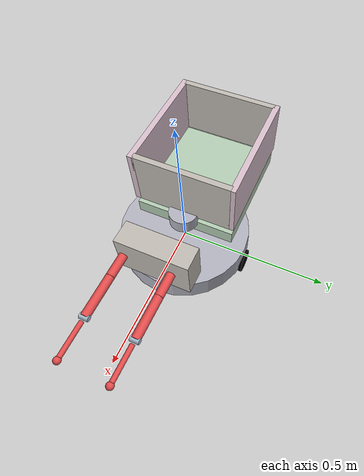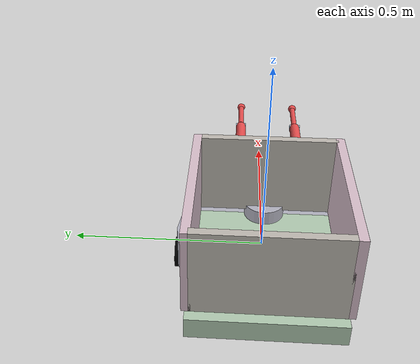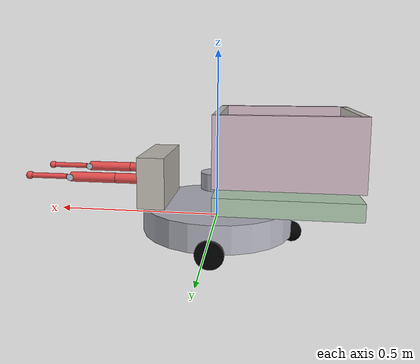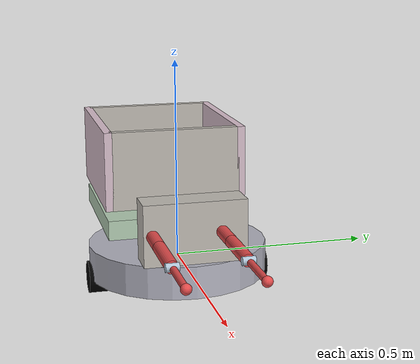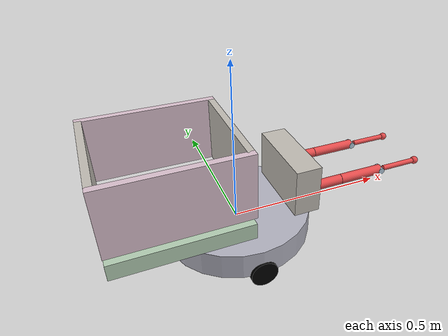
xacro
<?xml version="1.0"?>
<robot xmlns:xacro="http://www.ros.org/wiki/xacro" name="gpu_slam_bot">
  <!-- Robot Parameters -->
  <xacro:property name="base_radius" value="0.225"/>
  <xacro:property name="base_height" value="0.08"/>
  <xacro:property name="wheel_radius" value="0.04"/>
  <xacro:property name="wheel_width" value="0.06"/>
  <xacro:property name="wheel_separation" value="0.40"/>
  <xacro:property name="caster_radius" value="0.03"/>

  <!-- Enhanced Gripper Parameters -->
  <xacro:property name="gripper_base_height" value="0.15"/>
  <xacro:property name="gripper_base_width" value="0.25"/>
  <xacro:property name="upper_arm_length" value="0.12"/>
  <xacro:property name="forearm_length" value="0.14"/>
  <xacro:property name="forearm_radius" value="0.02"/>
  <xacro:property name="gripper_finger_length" value="0.12"/>
  <xacro:property name="arm_radius" value="0.015"/>
  <xacro:property name="finger_radius" value="0.008"/>
  <xacro:property name="gripper_tip_radius" value="0.012"/>

  <!-- Masses -->
  <xacro:property name="gripper_base_mass" value="0.5"/>
  <xacro:property name="upper_arm_mass" value="0.3"/>
  <xacro:property name="forearm_mass" value="0.2"/>
  <xacro:property name="finger_mass" value="0.1"/>
  <xacro:property name="tip_mass" value="0.05"/>

  <!-- Morandi Colors -->
  <material name="morandi_sage"><color rgba="0.7 0.8 0.7 1"/></material>
  <material name="morandi_dusty_pink"><color rgba="0.85 0.75 0.8 1"/></material>
  <material name="morandi_warm_gray"><color rgba="0.75 0.73 0.7 1"/></material>
  <material name="morandi_soft_blue"><color rgba="0.7 0.78 0.85 1"/></material>
  <material name="metallic_gray"><color rgba="0.7 0.7 0.75 1"/></material>
  <material name="wheel_black"><color rgba="0 0 0 1"/></material>
  <material name="gripper_red"><color rgba="0.9 0.3 0.3 1"/></material>

  <!-- Base link -->
  <link name="base_link">
    <visual>
      <origin xyz="0 0 0" rpy="0 0 0"/>
      <geometry>
        <cylinder length="${base_height}" radius="${base_radius}"/>
      </geometry>
      <material name="metallic_gray"/>
    </visual>
    <collision>
      <origin xyz="0 0 0" rpy="0 0 0"/>
      <geometry>
        <cylinder length="${base_height}" radius="${base_radius}"/>
      </geometry>
    </collision>
    <inertial>
      <origin xyz="0 0 0"/>
      <mass value="3.0"/>
      <inertia ixx="${(1/12)*3.0*(3*base_radius*base_radius + base_height*base_height)}"
               iyy="${(1/12)*3.0*(3*base_radius*base_radius + base_height*base_height)}"
               izz="${0.5*3.0*base_radius*base_radius}"
               ixy="0" ixz="0" iyz="0"/>
    </inertial>
  </link>

  <!-- Wheels -->
  <link name="wheel_left">
    <visual>
      <origin xyz="0 0 0" rpy="1.5708 0 0"/>
      <geometry>
        <cylinder length="${wheel_width}" radius="${wheel_radius}"/>
      </geometry>
      <material name="wheel_black"/>
    </visual>
    <collision>
      <origin xyz="0 0 0" rpy="1.5708 0 0"/>
      <geometry>
        <cylinder length="${wheel_width}" radius="${wheel_radius}"/>
      </geometry>
    </collision>
    <inertial>
      <origin xyz="0 0 0"/>
      <mass value="1.5"/>
      <inertia ixx="${(1/12)*1.5*(3*wheel_radius*wheel_radius + wheel_width*wheel_width)}"
               iyy="${0.5*1.5*wheel_radius*wheel_radius}"
               izz="${(1/12)*1.5*(3*wheel_radius*wheel_radius + wheel_width*wheel_width)}"
               ixy="0" ixz="0" iyz="0"/>
    </inertial>
  </link>

  <link name="wheel_right">
    <visual>
      <origin xyz="0 0 0" rpy="1.5708 0 0"/>
      <geometry>
        <cylinder length="${wheel_width}" radius="${wheel_radius}"/>
      </geometry>
      <material name="wheel_black"/>
    </visual>
    <collision>
      <origin xyz="0 0 0" rpy="1.5708 0 0"/>
      <geometry>
        <cylinder length="${wheel_width}" radius="${wheel_radius}"/>
      </geometry>
    </collision>
    <inertial>
      <origin xyz="0 0 0"/>
      <mass value="1.5"/>
      <inertia ixx="${(1/12)*1.5*(3*wheel_radius*wheel_radius + wheel_width*wheel_width)}"
               iyy="${0.5*1.5*wheel_radius*wheel_radius}"
               izz="${(1/12)*1.5*(3*wheel_radius*wheel_radius + wheel_width*wheel_width)}"
               ixy="0" ixz="0" iyz="0"/>
    </inertial>
  </link>

  <joint name="wheel_left_joint" type="continuous">
    <parent link="base_link"/>
    <child link="wheel_left"/>
    <origin xyz="0 ${wheel_separation/2} ${-base_height/2}" rpy="0 0 0"/>
    <axis xyz="0 1 0"/>
    <dynamics damping="0.2" friction="0.0"/>
  </joint>

  <joint name="wheel_right_joint" type="continuous">
    <parent link="base_link"/>
    <child link="wheel_right"/>
    <origin xyz="0 ${-wheel_separation/2} ${-base_height/2}" rpy="0 0 0"/>
    <axis xyz="0 1 0"/>
    <dynamics damping="0.2" friction="0.0"/>
  </joint>

  <!-- Caster wheel -->
  <link name="caster_link">
    <visual>
      <origin xyz="0 0 0" rpy="0 0 0"/>
      <geometry>
        <sphere radius="${caster_radius}"/>
      </geometry>
      <material name="wheel_black"/>
    </visual>
    <collision>
      <origin xyz="0 0 0" rpy="0 0 0"/>
      <geometry>
        <sphere radius="${caster_radius}"/>
      </geometry>
    </collision>
    <inertial>
      <origin xyz="0 0 0"/>
      <mass value="0.1"/>
      <inertia ixx="${(2/5)*0.1*caster_radius*caster_radius}"
               iyy="${(2/5)*0.1*caster_radius*caster_radius}"
               izz="${(2/5)*0.1*caster_radius*caster_radius}"
               ixy="0" ixz="0" iyz="0"/>
    </inertial>
  </link>

  <joint name="caster_joint" type="continuous">
    <parent link="base_link"/>
    <child link="caster_link"/>
    <origin xyz="${-base_radius} 0 ${-base_height/2}" rpy="0 0 0"/>
    <axis xyz="0 0 1"/>
    <dynamics damping="0.1" friction="0.1"/>
  </joint>

  <!-- Gripper Base Platform (vertical motion) - Lower initial position -->
  <link name="gripper_base_link">
    <visual>
      <geometry>
        <box size="0.08 ${gripper_base_width} ${gripper_base_height}"/>
      </geometry>
      <material name="morandi_warm_gray"/>
    </visual>
    <collision>
      <geometry>
        <box size="0.08 ${gripper_base_width} ${gripper_base_height}"/>
      </geometry>
    </collision>
    <inertial>
      <origin xyz="0 0 0"/>
      <mass value="${gripper_base_mass}"/>
      <inertia ixx="${(1/12)*gripper_base_mass*(gripper_base_width*gripper_base_width + gripper_base_height*gripper_base_height)}"
               iyy="${(1/12)*gripper_base_mass*(0.08*0.08 + gripper_base_height*gripper_base_height)}"
               izz="${(1/12)*gripper_base_mass*(0.08*0.08 + gripper_base_width*gripper_base_width)}"
               ixy="0" ixz="0" iyz="0"/>
    </inertial>
  </link>

  <!-- Lower initial position and increased range for gripper lift -->
  <joint name="gripper_lift_joint" type="prismatic">
    <parent link="base_link"/>
    <child link="gripper_base_link"/>
    <origin xyz="0.18 0 ${base_height/2 + 0.08}" rpy="0 0 0"/>
    <axis xyz="0 0 1"/>
    <limit effort="50" velocity="0.5" lower="0.0" upper="0.6"/>
    <dynamics damping="0.5" friction="0.2"/>
  </joint>

  <!-- Left Gripper Arm Assembly -->
  <!-- Left shoulder (horizontal swing) - FIXED CONSTRAINTS -->
  <link name="left_shoulder_link">
    <visual>
      <geometry>
        <cylinder length="0.04" radius="0.02"/>
      </geometry>
      <material name="morandi_soft_blue"/>
    </visual>
    <collision>
      <geometry>
        <cylinder length="0.04" radius="0.02"/>
      </geometry>
    </collision>
    <inertial>
      <origin xyz="0 0 0"/>
      <mass value="0.1"/>
      <inertia ixx="${(1/12)*0.1*(3*0.02*0.02 + 0.04*0.04)}"
               iyy="${(1/12)*0.1*(3*0.02*0.02 + 0.04*0.04)}"
               izz="${0.5*0.1*0.02*0.02}"
               ixy="0" ixz="0" iyz="0"/>
    </inertial>
  </link>

  <joint name="left_shoulder_joint" type="revolute">
    <parent link="gripper_base_link"/>
    <child link="left_shoulder_link"/>
    <origin xyz="0 ${gripper_base_width/3} 0" rpy="1.5708 0 0"/>
    <axis xyz="0 0 1"/>
    <!-- FIXED: Prevent backward bending into body -->
    <limit effort="30" velocity="2.0" lower="-0.5" upper="1.2"/>
    <dynamics damping="0.3" friction="0.1"/>
  </joint>

  <!-- Left upper arm (vertical swing) - FIXED CONSTRAINTS -->
  <link name="left_upper_arm_link">
    <visual>
      <origin xyz="${upper_arm_length/2} 0 0" rpy="0 1.5708 0"/>
      <geometry>
        <cylinder length="${upper_arm_length}" radius="${arm_radius}"/>
      </geometry>
      <material name="gripper_red"/>
    </visual>
    <collision>
      <origin xyz="${upper_arm_length/2} 0 0" rpy="0 1.5708 0"/>
      <geometry>
        <cylinder length="${upper_arm_length}" radius="${arm_radius}"/>
      </geometry>
    </collision>
    <inertial>
      <origin xyz="${upper_arm_length/2} 0 0"/>
      <mass value="${upper_arm_mass}"/>
      <inertia ixx="${(1/12)*upper_arm_mass*(3*arm_radius*arm_radius + upper_arm_length*upper_arm_length)}"
               iyy="${(1/12)*upper_arm_mass*(3*arm_radius*arm_radius + upper_arm_length*upper_arm_length)}"
               izz="${0.5*upper_arm_mass*arm_radius*arm_radius}"
               ixy="0" ixz="0" iyz="0"/>
    </inertial>
  </link>

  <joint name="left_shoulder_pitch_joint" type="revolute">
    <parent link="left_shoulder_link"/>
    <child link="left_upper_arm_link"/>
    <origin xyz="0 0 0.02" rpy="0 0 0"/>
    <axis xyz="0 1 0"/>
    <!-- FIXED: Prevent upward bending that causes body collision -->
    <limit effort="30" velocity="2.0" lower="-0.8" upper="0.3"/>
    <dynamics damping="0.3" friction="0.1"/>
  </joint>

  <!-- Left elbow - FIXED CONSTRAINTS -->
  <link name="left_elbow_link">
    <visual>
      <geometry>
        <sphere radius="0.015"/>
      </geometry>
      <material name="morandi_soft_blue"/>
    </visual>
    <collision>
      <geometry>
        <sphere radius="0.015"/>
      </geometry>
    </collision>
    <inertial>
      <origin xyz="0 0 0"/>
      <mass value="0.05"/>
      <inertia ixx="${(2/5)*0.05*0.015*0.015}"
               iyy="${(2/5)*0.05*0.015*0.015}"
               izz="${(2/5)*0.05*0.015*0.015}"
               ixy="0" ixz="0" iyz="0"/>
    </inertial>
  </link>

  <joint name="left_elbow_joint" type="revolute">
    <parent link="left_upper_arm_link"/>
    <child link="left_elbow_link"/>
    <origin xyz="${upper_arm_length} 0 0" rpy="0 0 0"/>
    <axis xyz="0 1 0"/>
    <!-- FIXED: Prevent hyper-extension backward -->
    <limit effort="20" velocity="3.0" lower="-0.5" upper="1.8"/>
    <dynamics damping="0.2" friction="0.05"/>
  </joint>

  <!-- Left forearm -->
  <link name="left_forearm_link">
    <visual>
      <origin xyz="${forearm_length/2} 0 0" rpy="0 1.5708 0"/>
      <geometry>
        <cylinder length="${forearm_length}" radius="${arm_radius}"/>
      </geometry>
      <material name="gripper_red"/>
    </visual>
    <collision>
      <origin xyz="${forearm_length/2} 0 0" rpy="0 1.5708 0"/>
      <geometry>
        <cylinder length="${forearm_length}" radius="${arm_radius}"/>
      </geometry>
    </collision>
    <inertial>
      <origin xyz="${forearm_length/2} 0 0"/>
      <mass value="${forearm_mass}"/>
      <inertia ixx="${(1/12)*forearm_mass*(3*arm_radius*arm_radius + forearm_length*forearm_length)}"
               iyy="${(1/12)*forearm_mass*(3*arm_radius*arm_radius + forearm_length*forearm_length)}"
               izz="${0.5*forearm_mass*arm_radius*arm_radius}"
               ixy="0" ixz="0" iyz="0"/>
    </inertial>
  </link>

  <joint name="left_forearm_joint" type="fixed">
    <parent link="left_elbow_link"/>
    <child link="left_forearm_link"/>
    <origin xyz="0 0 0" rpy="0 0 0"/>
  </joint>

  <!-- Left wrist - FIXED CONSTRAINTS -->
  <link name="left_wrist_link">
    <visual>
      <geometry>
        <cylinder length="0.03" radius="0.01"/>
      </geometry>
      <material name="morandi_soft_blue"/>
    </visual>
    <collision>
      <geometry>
        <cylinder length="0.03" radius="0.01"/>
      </geometry>
    </collision>
    <inertial>
      <origin xyz="0 0 0"/>
      <mass value="0.03"/>
      <inertia ixx="${(1/12)*0.03*(3*0.01*0.01 + 0.03*0.03)}"
               iyy="${(1/12)*0.03*(3*0.01*0.01 + 0.03*0.03)}"
               izz="${0.5*0.03*0.01*0.01}"
               ixy="0" ixz="0" iyz="0"/>
    </inertial>
  </link>

  <joint name="left_wrist_joint" type="revolute">
    <parent link="left_forearm_link"/>
    <child link="left_wrist_link"/>
    <origin xyz="${forearm_length} 0 0" rpy="0 0 0"/>
    <axis xyz="1 0 0"/>
    <!-- FIXED: Limited wrist rotation to prevent self-collision -->
    <limit effort="10" velocity="4.0" lower="-1.57" upper="1.57"/>
    <dynamics damping="0.1" friction="0.02"/>
  </joint>

  <!-- Left gripper finger - IMPROVED FOR PICKUP -->
  <link name="left_finger_link">
    <visual>
      <origin xyz="${gripper_finger_length/2} 0 0" rpy="0 1.5708 0"/>
      <geometry>
        <cylinder length="${gripper_finger_length}" radius="${finger_radius}"/>
      </geometry>
      <material name="gripper_red"/>
    </visual>
    <collision>
      <origin xyz="${gripper_finger_length/2} 0 0" rpy="0 1.5708 0"/>
      <geometry>
        <cylinder length="${gripper_finger_length}" radius="${finger_radius}"/>
      </geometry>
      <surface>
        <friction>
          <ode>
            <mu>1.5</mu>
            <mu2>1.5</mu2>
          </ode>
        </friction>
      </surface>
    </collision>
    <inertial>
      <origin xyz="${gripper_finger_length/2} 0 0"/>
      <mass value="${finger_mass}"/>
      <inertia ixx="${(1/12)*finger_mass*(3*finger_radius*finger_radius + gripper_finger_length*gripper_finger_length)}"
               iyy="${(1/12)*finger_mass*(3*finger_radius*finger_radius + gripper_finger_length*gripper_finger_length)}"
               izz="${0.5*finger_mass*finger_radius*finger_radius}"
               ixy="0" ixz="0" iyz="0"/>
    </inertial>
  </link>

  <joint name="left_finger_joint" type="revolute">
    <parent link="left_wrist_link"/>
    <child link="left_finger_link"/>
    <origin xyz="0.015 0 0" rpy="0 0 0"/>
    <axis xyz="0 0 1"/>
    <!-- IMPROVED: Better gripper range for box pickup -->
    <limit effort="15" velocity="2.0" lower="-0.6" upper="0.6"/>
    <dynamics damping="0.2" friction="0.05"/>
  </joint>

  <!-- Left fingertip - IMPROVED GRIP -->
  <link name="left_fingertip_link">
    <visual>
      <geometry>
        <sphere radius="${gripper_tip_radius}"/>
      </geometry>
      <material name="gripper_red"/>
    </visual>
    <collision name="left_fingertip_collision">
      <geometry>
        <sphere radius="${gripper_tip_radius}"/>
      </geometry>
      <surface>
        <friction>
          <ode>
            <mu>2.5</mu>
            <mu2>2.5</mu2>
          </ode>
        </friction>
        <contact>
          <ode>
            <kp>1000000.0</kp>
            <kd>100.0</kd>
            <max_vel>0.01</max_vel>
            <min_depth>0.001</min_depth>
          </ode>
        </contact>
      </surface>
    </collision>
    <inertial>
      <origin xyz="0 0 0"/>
      <mass value="${tip_mass}"/>
      <inertia ixx="${(2/5)*tip_mass*gripper_tip_radius*gripper_tip_radius}"
               iyy="${(2/5)*tip_mass*gripper_tip_radius*gripper_tip_radius}"
               izz="${(2/5)*tip_mass*gripper_tip_radius*gripper_tip_radius}"
               ixy="0" ixz="0" iyz="0"/>
    </inertial>
  </link>

  <joint name="left_fingertip_joint" type="fixed">
    <parent link="left_finger_link"/>
    <child link="left_fingertip_link"/>
    <origin xyz="${gripper_finger_length} 0 0" rpy="0 0 0"/>
  </joint>

  <!-- Right Gripper Arm Assembly (Mirror of left with FIXED CONSTRAINTS) -->
  <link name="right_shoulder_link">
    <visual>
      <geometry>
        <cylinder length="0.04" radius="0.02"/>
      </geometry>
      <material name="morandi_soft_blue"/>
    </visual>
    <collision>
      <geometry>
        <cylinder length="0.04" radius="0.02"/>
      </geometry>
    </collision>
    <inertial>
      <origin xyz="0 0 0"/>
      <mass value="0.1"/>
      <inertia ixx="${(1/12)*0.1*(3*0.02*0.02 + 0.04*0.04)}"
               iyy="${(1/12)*0.1*(3*0.02*0.02 + 0.04*0.04)}"
               izz="${0.5*0.1*0.02*0.02}"
               ixy="0" ixz="0" iyz="0"/>
    </inertial>
  </link>

  <joint name="right_shoulder_joint" type="revolute">
    <parent link="gripper_base_link"/>
    <child link="right_shoulder_link"/>
    <origin xyz="0 ${-gripper_base_width/3} 0" rpy="1.5708 0 0"/>
    <axis xyz="0 0 1"/>
    <!-- FIXED: Mirror constraints to prevent backward bending -->
    <limit effort="30" velocity="2.0" lower="-1.2" upper="0.5"/>
    <dynamics damping="0.3" friction="0.1"/>
  </joint>

  <link name="right_upper_arm_link">
    <visual>
      <origin xyz="${upper_arm_length/2} 0 0" rpy="0 1.5708 0"/>
      <geometry>
        <cylinder length="${upper_arm_length}" radius="${arm_radius}"/>
      </geometry>
      <material name="gripper_red"/>
    </visual>
    <collision>
      <origin xyz="${upper_arm_length/2} 0 0" rpy="0 1.5708 0"/>
      <geometry>
        <cylinder length="${upper_arm_length}" radius="${arm_radius}"/>
      </geometry>
    </collision>
    <inertial>
      <origin xyz="${upper_arm_length/2} 0 0"/>
      <mass value="${upper_arm_mass}"/>
      <inertia ixx="${(1/12)*upper_arm_mass*(3*arm_radius*arm_radius + upper_arm_length*upper_arm_length)}"
               iyy="${(1/12)*upper_arm_mass*(3*arm_radius*arm_radius + upper_arm_length*upper_arm_length)}"
               izz="${0.5*upper_arm_mass*arm_radius*arm_radius}"
               ixy="0" ixz="0" iyz="0"/>
    </inertial>
  </link>

  <joint name="right_shoulder_pitch_joint" type="revolute">
    <parent link="right_shoulder_link"/>
    <child link="right_upper_arm_link"/>
    <origin xyz="0 0 0.02" rpy="0 0 0"/>
    <axis xyz="0 1 0"/>
    <!-- FIXED: Same constraints as left to prevent body collision -->
    <limit effort="30" velocity="2.0" lower="-0.8" upper="0.3"/>
    <dynamics damping="0.3" friction="0.1"/>
  </joint>

  <!-- Right elbow - FIXED CONSTRAINTS -->
  <link name="right_elbow_link">
    <visual>
      <geometry>
        <sphere radius="0.015"/>
      </geometry>
      <material name="morandi_soft_blue"/>
    </visual>
    <collision>
      <geometry>
        <sphere radius="0.015"/>
      </geometry>
    </collision>
    <inertial>
      <origin xyz="0 0 0"/>
      <mass value="0.05"/>
      <inertia ixx="${(2/5)*0.05*0.015*0.015}"
               iyy="${(2/5)*0.05*0.015*0.015}"
               izz="${(2/5)*0.05*0.015*0.015}"
               ixy="0" ixz="0" iyz="0"/>
    </inertial>
  </link>

  <joint name="right_elbow_joint" type="revolute">
    <parent link="right_upper_arm_link"/>
    <child link="right_elbow_link"/>
    <origin xyz="${upper_arm_length} 0 0" rpy="0 0 0"/>
    <axis xyz="0 1 0"/>
    <!-- FIXED: Same constraints as left -->
    <limit effort="20" velocity="3.0" lower="-0.5" upper="1.8"/>
    <dynamics damping="0.2" friction="0.05"/>
  </joint>

  <!-- Right forearm -->
  <link name="right_forearm_link">
    <visual>
      <origin xyz="${forearm_length/2} 0 0" rpy="0 1.5708 0"/>
      <geometry>
        <cylinder length="${forearm_length}" radius="${arm_radius}"/>
      </geometry>
      <material name="gripper_red"/>
    </visual>
    <collision>
      <origin xyz="${forearm_length/2} 0 0" rpy="0 1.5708 0"/>
      <geometry>
        <cylinder length="${forearm_length}" radius="${arm_radius}"/>
      </geometry>
    </collision>
    <inertial>
      <origin xyz="${forearm_length/2} 0 0"/>
      <mass value="${forearm_mass}"/>
      <inertia ixx="${(1/12)*forearm_mass*(3*arm_radius*arm_radius + forearm_length*forearm_length)}"
               iyy="${(1/12)*forearm_mass*(3*arm_radius*forearm_radius + forearm_length*forearm_length)}"
               izz="${0.5*forearm_mass*arm_radius*arm_radius}"
               ixy="0" ixz="0" iyz="0"/>
    </inertial>
  </link>

  <joint name="right_forearm_joint" type="fixed">
    <parent link="right_elbow_link"/>
    <child link="right_forearm_link"/>
    <origin xyz="0 0 0" rpy="0 0 0"/>
  </joint>

  <!-- Right wrist - FIXED CONSTRAINTS -->
  <link name="right_wrist_link">
    <visual>
      <geometry>
        <cylinder length="0.03" radius="0.01"/>
      </geometry>
      <material name="morandi_soft_blue"/>
    </visual>
    <collision>
      <geometry>
        <cylinder length="0.03" radius="0.01"/>
      </geometry>
    </collision>
    <inertial>
      <origin xyz="0 0 0"/>
      <mass value="0.03"/>
      <inertia ixx="${(1/12)*0.03*(3*0.01*0.01 + 0.03*0.03)}"
               iyy="${(1/12)*0.03*(3*0.01*0.01 + 0.03*0.03)}"
               izz="${0.5*0.03*0.01*0.01}"
               ixy="0" ixz="0" iyz="0"/>
    </inertial>
  </link>

  <joint name="right_wrist_joint" type="revolute">
    <parent link="right_forearm_link"/>
    <child link="right_wrist_link"/>
    <origin xyz="${forearm_length} 0 0" rpy="0 0 0"/>
    <axis xyz="1 0 0"/>
    <!-- FIXED: Same constraints as left -->
    <limit effort="10" velocity="4.0" lower="-1.57" upper="1.57"/>
    <dynamics damping="0.1" friction="0.02"/>
  </joint>

  <!-- Right gripper finger - IMPROVED FOR PICKUP -->
  <link name="right_finger_link">
    <visual>
      <origin xyz="${gripper_finger_length/2} 0 0" rpy="0 1.5708 0"/>
      <geometry>
        <cylinder length="${gripper_finger_length}" radius="${finger_radius}"/>
      </geometry>
      <material name="gripper_red"/>
    </visual>
    <collision>
      <origin xyz="${gripper_finger_length/2} 0 0" rpy="0 1.5708 0"/>
      <geometry>
        <cylinder length="${gripper_finger_length}" radius="${finger_radius}"/>
      </geometry>
      <surface>
        <friction>
          <ode>
            <mu>1.5</mu>
            <mu2>1.5</mu2>
          </ode>
        </friction>
      </surface>
    </collision>
    <inertial>
      <origin xyz="${gripper_finger_length/2} 0 0"/>
      <mass value="${finger_mass}"/>
      <inertia ixx="${(1/12)*finger_mass*(3*finger_radius*finger_radius + gripper_finger_length*gripper_finger_length)}"
               iyy="${(1/12)*finger_mass*(3*finger_radius*finger_radius + gripper_finger_length*gripper_finger_length)}"
               izz="${0.5*finger_mass*finger_radius*finger_radius}"
               ixy="0" ixz="0" iyz="0"/>
    </inertial>
  </link>

  <joint name="right_finger_joint" type="revolute">
    <parent link="right_wrist_link"/>
    <child link="right_finger_link"/>
    <origin xyz="0.015 0 0" rpy="0 0 0"/>
    <axis xyz="0 0 1"/>
    <!-- IMPROVED: Better gripper range for box pickup -->
    <limit effort="15" velocity="2.0" lower="-0.6" upper="0.6"/>
    <dynamics damping="0.2" friction="0.05"/>
  </joint>

  <!-- Right fingertip - IMPROVED GRIP -->
  <link name="right_fingertip_link">
    <visual>
      <geometry>
        <sphere radius="${gripper_tip_radius}"/>
      </geometry>
      <material name="gripper_red"/>
    </visual>
    <collision name="right_fingertip_collision">
      <geometry>
        <sphere radius="${gripper_tip_radius}"/>
      </geometry>
      <surface>
        <friction>
          <ode>
            <mu>2.5</mu>
            <mu2>2.5</mu2>
          </ode>
        </friction>
        <contact>
          <ode>
            <kp>1000000.0</kp>
            <kd>100.0</kd>
            <max_vel>0.01</max_vel>
            <min_depth>0.001</min_depth>
          </ode>
        </contact>
      </surface>
    </collision>
    <inertial>
      <origin xyz="0 0 0"/>
      <mass value="${tip_mass}"/>
      <inertia ixx="${(2/5)*tip_mass*gripper_tip_radius*gripper_tip_radius}"
               iyy="${(2/5)*tip_mass*gripper_tip_radius*gripper_tip_radius}"
               izz="${(2/5)*tip_mass*gripper_tip_radius*gripper_tip_radius}"
               ixy="0" ixz="0" iyz="0"/>
    </inertial>
  </link>

  <joint name="right_fingertip_joint" type="fixed">
    <parent link="right_finger_link"/>
    <child link="right_fingertip_link"/>
    <origin xyz="${gripper_finger_length} 0 0" rpy="0 0 0"/>
  </joint>

  <!-- Beautiful Morandi-Colored Basket (Open-Top) -->
  <link name="basket_link">
    <!-- Basket base -->
    <visual name="basket_base_visual">
      <origin xyz="0 0 -0.075" rpy="0 0 0"/>
      <geometry>
        <box size="0.4 0.35 0.05"/>
      </geometry>
      <material name="morandi_sage"/>
    </visual>
    <!-- Basket walls (thinner for more capacity) -->
    <visual name="basket_front_visual">
      <origin xyz="0 0.17 0.075" rpy="0 0 0"/>
      <geometry>
        <box size="0.4 0.02 0.2"/>
      </geometry>
      <material name="morandi_dusty_pink"/>
    </visual>
    <visual name="basket_back_visual">
      <origin xyz="0 -0.17 0.075" rpy="0 0 0"/>
      <geometry>
        <box size="0.4 0.02 0.2"/>
      </geometry>
      <material name="morandi_dusty_pink"/>
    </visual>
    <visual name="basket_left_visual">
      <origin xyz="0.19 0 0.075" rpy="0 0 0"/>
      <geometry>
        <box size="0.02 0.33 0.2"/>
      </geometry>
      <material name="morandi_warm_gray"/>
    </visual>
    <visual name="basket_right_visual">
      <origin xyz="-0.19 0 0.075" rpy="0 0 0"/>
      <geometry>
        <box size="0.02 0.33 0.2"/>
      </geometry>
      <material name="morandi_warm_gray"/>
    </visual>
    <!-- Collision for basket (separate base and walls for precision) -->
    <collision name="basket_base_collision">
      <origin xyz="0 0 -0.075" rpy="0 0 0"/>
      <geometry>
        <box size="0.4 0.35 0.05"/>
      </geometry>
      <surface>
        <friction>
          <ode>
            <mu>0.8</mu>
            <mu2>0.8</mu2>
          </ode>
        </friction>
        <contact>
          <ode>
            <kp>1000000.0</kp>
            <kd>100.0</kd>
          </ode>
        </contact>
      </surface>
    </collision>
    <collision name="basket_front_collision">
      <origin xyz="0 0.17 0.075" rpy="0 0 0"/>
      <geometry>
        <box size="0.4 0.02 0.2"/>
      </geometry>
    </collision>
    <collision name="basket_back_collision">
      <origin xyz="0 -0.17 0.075" rpy="0 0 0"/>
      <geometry>
        <box size="0.4 0.02 0.2"/>
      </geometry>
    </collision>
    <collision name="basket_left_collision">
      <origin xyz="0.19 0 0.075" rpy="0 0 0"/>
      <geometry>
        <box size="0.02 0.33 0.2"/>
      </geometry>
    </collision>
    <collision name="basket_right_collision">
      <origin xyz="-0.19 0 0.075" rpy="0 0 0"/>
      <geometry>
        <box size="0.02 0.33 0.2"/>
      </geometry>
    </collision>
    <inertial>
      <origin xyz="0 0 0.075"/>
      <mass value="0.6"/>
      <inertia ixx="0.015" iyy="0.025" izz="0.035" ixy="0" ixz="0" iyz="0"/>
    </inertial>
  </link>

  <joint name="basket_joint" type="fixed">
    <parent link="base_link"/>
    <child link="basket_link"/>
    <origin xyz="-0.2 0 0.15" rpy="0 0 0"/>
  </joint>

  <!-- LIDAR -->
  <link name="lidar_link">
    <visual>
      <origin xyz="0 0 0" rpy="0 0 0"/>
      <geometry>
        <cylinder length="0.05" radius="0.05"/>
      </geometry>
      <material name="metallic_gray"/>
    </visual>
    <collision>
      <origin xyz="0 0 0" rpy="0 0 0"/>
      <geometry>
        <cylinder length="0.05" radius="0.05"/>
      </geometry>
    </collision>
    <inertial>
      <origin xyz="0 0 0"/>
      <mass value="0.2"/>
      <inertia ixx="0.001" iyy="0.001" izz="0.001" ixy="0" ixz="0" iyz="0"/>
    </inertial>
  </link>

  <joint name="lidar_joint" type="fixed">
    <parent link="base_link"/>
    <child link="lidar_link"/>
    <origin xyz="0 0 ${base_height + 0.03}" rpy="0 0 0"/>
  </joint>

  <!-- Gazebo Plugins -->
  <gazebo>
    <plugin name="gazebo_ros_clock" filename="libgazebo_ros_clock.so"/>
  </gazebo>

  <gazebo>
    <plugin name="differential_drive_controller" filename="libgazebo_ros_diff_drive.so">
      <ros>
        <namespace>/</namespace>
      </ros>
      <update_rate>30</update_rate>
      <left_joint>wheel_left_joint</left_joint>
      <right_joint>wheel_right_joint</right_joint>
      <wheel_separation>${wheel_separation}</wheel_separation>
      <wheel_diameter>${2*wheel_radius}</wheel_diameter>
      <max_wheel_torque>30</max_wheel_torque>
      <max_wheel_acceleration>1.0</max_wheel_acceleration>
      <command_topic>cmd_vel</command_topic>
      <publish_odom>true</publish_odom>
      <publish_odom_tf>true</publish_odom_tf>
      <odometry_topic>odom</odometry_topic>
      <odometry_frame>odom</odometry_frame>
      <robot_base_frame>base_link</robot_base_frame>
    </plugin>
  </gazebo>

  <gazebo>
    <plugin name="gazebo_ros_joint_state_publisher" filename="libgazebo_ros_joint_state_publisher.so">
      <ros>
        <namespace>/</namespace>
      </ros>
      <update_rate>50</update_rate>
      <joint_name>wheel_left_joint</joint_name>
      <joint_name>wheel_right_joint</joint_name>
      <joint_name>gripper_lift_joint</joint_name>
      <joint_name>left_shoulder_joint</joint_name>
      <joint_name>left_shoulder_pitch_joint</joint_name>
      <joint_name>left_elbow_joint</joint_name>
      <joint_name>left_wrist_joint</joint_name>
      <joint_name>left_finger_joint</joint_name>
      <joint_name>right_shoulder_joint</joint_name>
      <joint_name>right_shoulder_pitch_joint</joint_name>
      <joint_name>right_elbow_joint</joint_name>
      <joint_name>right_wrist_joint</joint_name>
      <joint_name>right_finger_joint</joint_name>
      <joint_name>caster_joint</joint_name>
    </plugin>
  </gazebo>

  <gazebo reference="lidar_link">
    <sensor type="ray" name="laser_scanner">
      <pose>0 0 0 0 0 0</pose>
      <visualize>false</visualize>
      <update_rate>40</update_rate>
      <ray>
        <scan>
          <horizontal>
            <samples>720</samples>
            <resolution>1</resolution>
            <min_angle>-1.570796</min_angle>
            <max_angle>1.570796</max_angle>
          </horizontal>
        </scan>
        <range>
          <min>0.10</min>
          <max>30.0</max>
          <resolution>0.01</resolution>
        </range>
        <noise>
          <type>gaussian</type>
          <mean>0.0</mean>
          <stddev>0.01</stddev>
        </noise>
      </ray>
      <plugin name="gazebo_ros_laser" filename="libgazebo_ros_ray_sensor.so">
        <ros>
          <namespace>/</namespace>
        </ros>
        <output_type>sensor_msgs/LaserScan</output_type>
        <topicName>scan</topicName>
        <frameName>lidar_link</frameName>
      </plugin>
    </sensor>
  </gazebo>

  <gazebo>
    <plugin name="gazebo_ros2_control" filename="libgazebo_ros2_control.so">
      <parameters>$(find gpu_slam_bot)/config/controllers.yaml</parameters>
    </plugin>
  </gazebo>

  <!-- Contact Sensors for Grippers -->
  <gazebo reference="left_fingertip_link">
    <sensor name="left_fingertip_contact" type="contact">
      <contact>
        <collision>left_fingertip_collision</collision>
      </contact>
      <plugin name="gazebo_ros_contact_sensor" filename="libgazebo_ros_contact_sensor.so">
        <ros>
          <namespace>/</namespace>
        </ros>
        <contact_topic>left_gripper_contact</contact_topic>
        <frame_name>left_fingertip_link</frame_name>
      </plugin>
      <always_on>1</always_on>
      <update_rate>100</update_rate>
    </sensor>
  </gazebo>

  <gazebo reference="right_fingertip_link">
    <sensor name="right_fingertip_contact" type="contact">
      <contact>
        <collision>right_fingertip_collision</collision>
      </contact>
      <plugin name="gazebo_ros_contact_sensor" filename="libgazebo_ros_contact_sensor.so">
        <ros>
          <namespace>/</namespace>
        </ros>
        <contact_topic>right_gripper_contact</contact_topic>
        <frame_name>right_fingertip_link</frame_name>
      </plugin>
      <always_on>1</always_on>
      <update_rate>100</update_rate>
    </sensor>
  </gazebo>

  <!-- Gazebo Material Properties -->
  <gazebo reference="base_link">
    <material>Gazebo/Grey</material>
    <mu1>0.8</mu1>
    <mu2>0.8</mu2>
  </gazebo>

  <gazebo reference="wheel_left">
    <material>Gazebo/Black</material>
    <mu1>1.0</mu1>
    <mu2>1.0</mu2>
  </gazebo>

  <gazebo reference="wheel_right">
    <material>Gazebo/Black</material>
    <mu1>1.0</mu1>
    <mu2>1.0</mu2>
  </gazebo>

  <gazebo reference="caster_link">
    <material>Gazebo/Black</material>
    <mu1>0.0</mu1>
    <mu2>0.0</mu2>
  </gazebo>

  <gazebo reference="basket_link">
    <material>Gazebo/Green</material>
  </gazebo>

  <gazebo reference="gripper_base_link">
    <material>Gazebo/Grey</material>
  </gazebo>

  <gazebo reference="left_upper_arm_link">
    <material>Gazebo/Red</material>
  </gazebo>

  <gazebo reference="right_upper_arm_link">
    <material>Gazebo/Red</material>
  </gazebo>

  <gazebo reference="left_forearm_link">
    <material>Gazebo/Red</material>
  </gazebo>

  <gazebo reference="right_forearm_link">
    <material>Gazebo/Red</material>
  </gazebo>

  <gazebo reference="left_finger_link">
    <material>Gazebo/Red</material>
    <mu1>2.0</mu1>
    <mu2>2.0</mu2>
  </gazebo>

  <gazebo reference="right_finger_link">
    <material>Gazebo/Red</material>
    <mu1>2.0</mu1>
    <mu2>2.0</mu2>
  </gazebo>

  <gazebo reference="left_fingertip_link">
    <material>Gazebo/Red</material>
    <mu1>2.5</mu1>
    <mu2>2.5</mu2>
  </gazebo>

  <gazebo reference="right_fingertip_link">
    <material>Gazebo/Red</material>
    <mu1>2.5</mu1>
    <mu2>2.5</mu2>
  </gazebo>

  <!-- Transmissions for ros2_control -->
  <transmission name="gripper_lift_trans">
    <type>transmission_interface/SimpleTransmission</type>
    <joint name="gripper_lift_joint">
      <hardwareInterface>PositionJointInterface</hardwareInterface>
    </joint>
    <actuator name="gripper_lift_motor">
      <hardwareInterface>PositionJointInterface</hardwareInterface>
      <mechanicalReduction>1</mechanicalReduction>
    </actuator>
  </transmission>

  <transmission name="left_finger_trans">
    <type>transmission_interface/SimpleTransmission</type>
    <joint name="left_finger_joint">
      <hardwareInterface>PositionJointInterface</hardwareInterface>
    </joint>
    <actuator name="left_finger_motor">
      <hardwareInterface>PositionJointInterface</hardwareInterface>
      <mechanicalReduction>1</mechanicalReduction>
    </actuator>
  </transmission>

  <transmission name="right_finger_trans">
    <type>transmission_interface/SimpleTransmission</type>
    <joint name="right_finger_joint">
      <hardwareInterface>PositionJointInterface</hardwareInterface>
    </joint>
    <actuator name="right_finger_motor">
      <hardwareInterface>PositionJointInterface</hardwareInterface>
      <mechanicalReduction>1</mechanicalReduction>
    </actuator>
  </transmission>

</robot>
